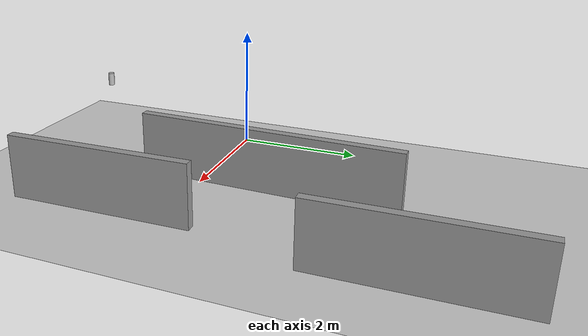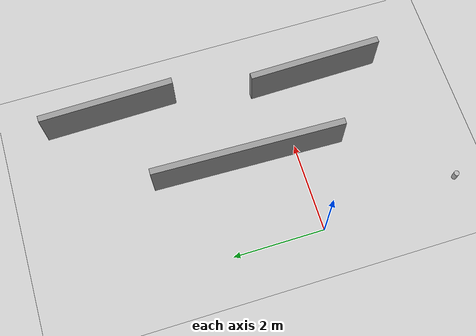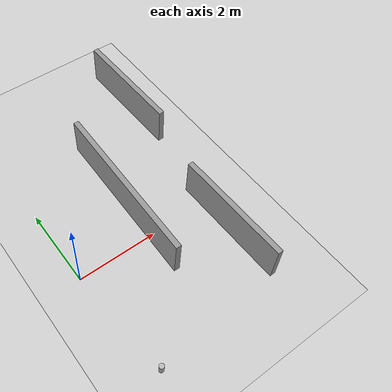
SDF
<sdf version="1.6">
 <world name="default">
  <light name="sun" type="directional">
   <pose>0 0 10 0 -0 0</pose>
   <diffuse>0.8 0.8 0.8 1</diffuse>
   <specular>0.2 0.2 0.2 1</specular>
   <attenuation>
    <range>1000</range>
    <constant>0.9</constant>
    <linear>0.01</linear>
    <quadratic>0.001</quadratic>
   </attenuation>
   <direction>-0.5 0.1 -0.9</direction>
  </light>
  <model name="ground_plane">
   <static>1</static>
   <link name="link">
    <collision name="collision">
     <geometry><plane><normal>0 0 1</normal><size>100 100</size></plane></geometry>
     <surface>
      <contact><collide_bitmask>65535</collide_bitmask></contact>
      <friction><ode><mu>100</mu><mu2>50</mu2></ode></friction>
     </surface>
    </collision>
    <visual name="visual">
     <cast_shadows>0</cast_shadows>
     <geometry><plane><normal>0 0 1</normal><size>100 100</size></plane></geometry>
     <material>
      <script><uri>file://media/materials/scripts/gazebo.material</uri><name>Gazebo/Grey</name></script>
     </material>
    </visual>
   </link>
  </model>
  <gravity>0 0 -9.8</gravity>
  <magnetic_field>6e-06 2.3e-05 -4.2e-05</magnetic_field>
  <atmosphere type="adiabatic"/>
  <physics name="default_physics" default="0" type="ode">
   <max_step_size>0.001</max_step_size>
   <real_time_factor>1</real_time_factor>
   <real_time_update_rate>1000</real_time_update_rate>
  </physics>
  <scene><ambient>0.4 0.4 0.4 1</ambient><background>0.7 0.7 0.7 1</background><shadows>1</shadows></scene>
  <audio><device>default</device></audio>
  <spherical_coordinates>
   <surface_model>EARTH_WGS84</surface_model>
   <latitude_deg>0</latitude_deg>
   <longitude_deg>0</longitude_deg>
   <elevation>0</elevation>
   <heading_deg>0</heading_deg>
  </spherical_coordinates>
  <model name="beer">
   <link name="link">
    <pose>0 0 0.115 0 -0 0</pose>
    <inertial>
     <mass>0.39</mass>
     <inertia><ixx>0.00058</ixx><ixy>0</ixy><ixz>0</ixz><iyy>0.00058</iyy><iyz>0</iyz><izz>0.00019</izz></inertia>
    </inertial>
    <collision name="collision">
     <geometry><cylinder><radius>0.055</radius><length>0.23</length></cylinder></geometry>
    </collision>
    <visual name="visual">
     <geometry><cylinder><radius>0.055</radius><length>0.23</length></cylinder></geometry>
     <material>
      <script>
       <uri>model://beer/materials/scripts</uri>
       <uri>model://beer/materials/textures</uri>
       <name>Beer/Diffuse</name>
      </script>
     </material>
    </visual>
   </link>
   <pose>0.093557 -2.80143 0.775006 2.6e-05 9.7e-05 0.002737</pose>
  </model>
  <model name="unit_box_0">
   <pose>3.47713 -0.905082 0.499845 -0.000106 4e-06 0.017343</pose>
   <link name="link">
    <inertial>
     <mass>1</mass>
     <inertia>
      <ixx>0.166667</ixx>
      <ixy>0</ixy>
      <ixz>0</ixz>
      <iyy>0.166667</iyy>
      <iyz>0</iyz>
      <izz>0.166667</izz>
     </inertia>
    </inertial>
    <collision name="collision"><geometry><box><size>0.138125 2.9336 1</size></box></geometry></collision>
    <visual name="visual">
     <geometry><box><size>0.138125 2.9336 1</size></box></geometry>
     <material>
      <script><name>Gazebo/Grey</name><uri>file://media/materials/scripts/gazebo.material</uri></script>
     </material>
    </visual>
   </link>
  </model>
  <model name="unit_box_0_clone">
   <pose>1.92092 1.08074 0.499026 -0.000461 -1.3e-05 -0.024654</pose>
   <link name="link">
    <inertial>
     <mass>1</mass>
     <inertia>
      <ixx>0.166667</ixx>
      <ixy>0</ixy>
      <ixz>0</ixz>
      <iyy>0.166667</iyy>
      <iyz>0</iyz>
      <izz>0.166667</izz>
     </inertia>
    </inertial>
    <collision name="collision"><geometry><box><size>0.138125 4.23242 1</size></box></geometry></collision>
    <visual name="visual">
     <geometry><box><size>0.138125 4.23242 1</size></box></geometry>
     <material>
      <script><name>Gazebo/Grey</name><uri>file://media/materials/scripts/gazebo.material</uri></script>
     </material>
    </visual>
   </link>
  </model>
  <model name="unit_box_0_clone_0">
   <pose>3.83092 3.67783 0.499845 0.000106 -4e-06 0.016275</pose>
   <link name="link">
    <inertial>
     <mass>1</mass>
     <inertia>
      <ixx>0.166667</ixx>
      <ixy>0</ixy>
      <ixz>0</ixz>
      <iyy>0.166667</iyy>
      <iyz>0</iyz>
      <izz>0.166667</izz>
     </inertia>
    </inertial>
    <collision name="collision"><geometry><box><size>0.138125 2.9336 1</size></box></geometry></collision>
    <visual name="visual">
     <geometry><box><size>0.138125 2.9336 1</size></box></geometry>
     <material>
      <script><name>Gazebo/Grey</name><uri>file://media/materials/scripts/gazebo.material</uri></script>
     </material>
    </visual>
   </link>
  </model>
 </world>
</sdf>
